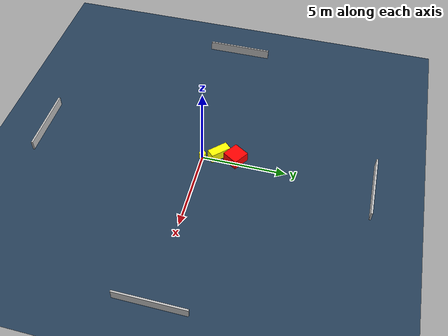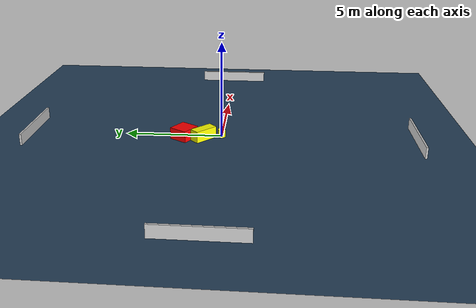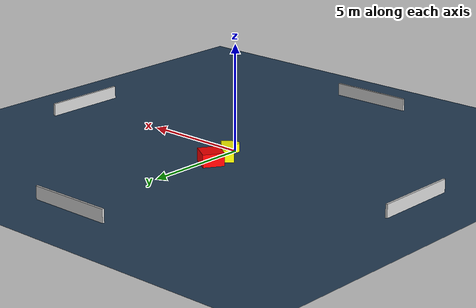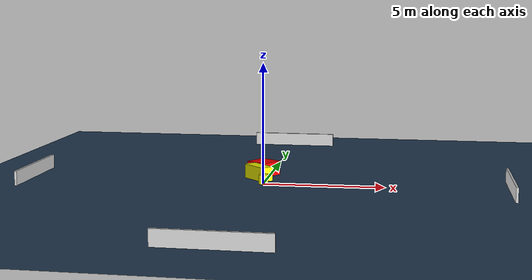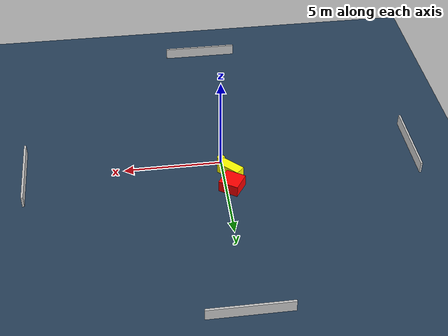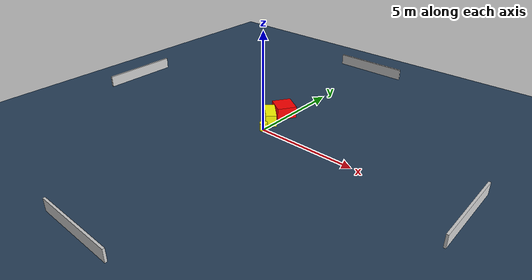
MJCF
<?xml version="1.0" ?>
<mujoco model="generated_environment">
  <option timestep="0.01" integrator="RK4" cone="elliptic"/>
  <default>
    <geom density="1"/>
  </default>
  <asset>
    <texture builtin="gradient" height="3072" name="skybox" rgb1="0.3 0.5 0.7" rgb2="0 0 0" type="skybox" width="512"/>
    <texture builtin="checker" height="300" name="groundplane" rgb1="0.2 0.3 0.4" rgb2="0.1 0.2 0.3" type="2d" width="300"/>
    <material name="groundplane" reflectance="0.2" texrepeat="5 5" texture="groundplane"/>
  </asset>
  <worldbody>
    <light dir="0 0 -1" directional="true" pos="0 0 1.5"/>
    <geom condim="3" friction="0.5 0.005 0.001" material="groundplane" name="floor" pos="0 0 0" size="0 0 0.05" type="plane"/>
    <body name="walls">
      <geom name="wall_1" condim="4" pos="-10.0 0.0 0.3" rgba="0.800000011920929 0.800000011920929 0.800000011920929 1.0" size="0.05 2.0 0.3" type="box"/>
      <geom name="wall_2" condim="4" pos="10.0 0.0 0.3" rgba="0.800000011920929 0.800000011920929 0.800000011920929 1.0" size="0.05 2.0 0.3" type="box"/>
      <geom name="wall_3" condim="4" pos="0.0 -10.0 0.3" rgba="0.800000011920929 0.800000011920929 0.800000011920929 1.0" size="2.0 0.05 0.3" type="box"/>
      <geom name="wall_4" condim="4" pos="0.0 10.0 0.3" rgba="0.800000011920929 0.800000011920929 0.800000011920929 1.0" size="2.0 0.05 0.3" type="box"/>
    </body>
    <body name="robot">
      <joint name="joint_x" type="slide" pos="0 0 0" axis="1 0 0"/>
      <joint name="joint_y" type="slide" pos="0 0 0" axis="0 1 0"/>
      <geom name="robot" type="cylinder" pos="0.0 0.0 0.2" size="0.2 0.2 0.0" mass="5.0" friction="1.0 0.005 0.0001" condim="4" rgba="1.0 1.0 0.0 1.0"/>
    </body>
    <body name="obstacle_1_movable">
      <geom name="obstacle_1_movable" condim="4" pos="-0.3610937781019702 0.913878675684497 0.3" euler="0 0 135.34740857345955" friction="0.0 0.005 0.001" rgba="1.0 1.0 0.0 1.0" size="0.6322655521878062 0.26889145798763936 0.3" type="box" mass="0.1"/>
      <joint type="free"/>
    </body>
    <body name="obstacle_2_static">
      <geom name="obstacle_2_static" condim="4" pos="-0.3035176259910861 1.932784608634832 0.3" euler="0 0 147.39078544613497" friction="0.0 0.005 0.001" rgba="1.0 0.0 0.0 1.0" size="0.5128966917587239 0.49360823923610114 0.3" type="box"/>
    </body>
  </worldbody>
  <actuator>
    <motor name="actuator_x" joint="joint_x" gear="1" ctrlrange="-1 1"/>
    <motor name="actuator_y" joint="joint_y" gear="1" ctrlrange="-1 1"/>
  </actuator>
</mujoco>
